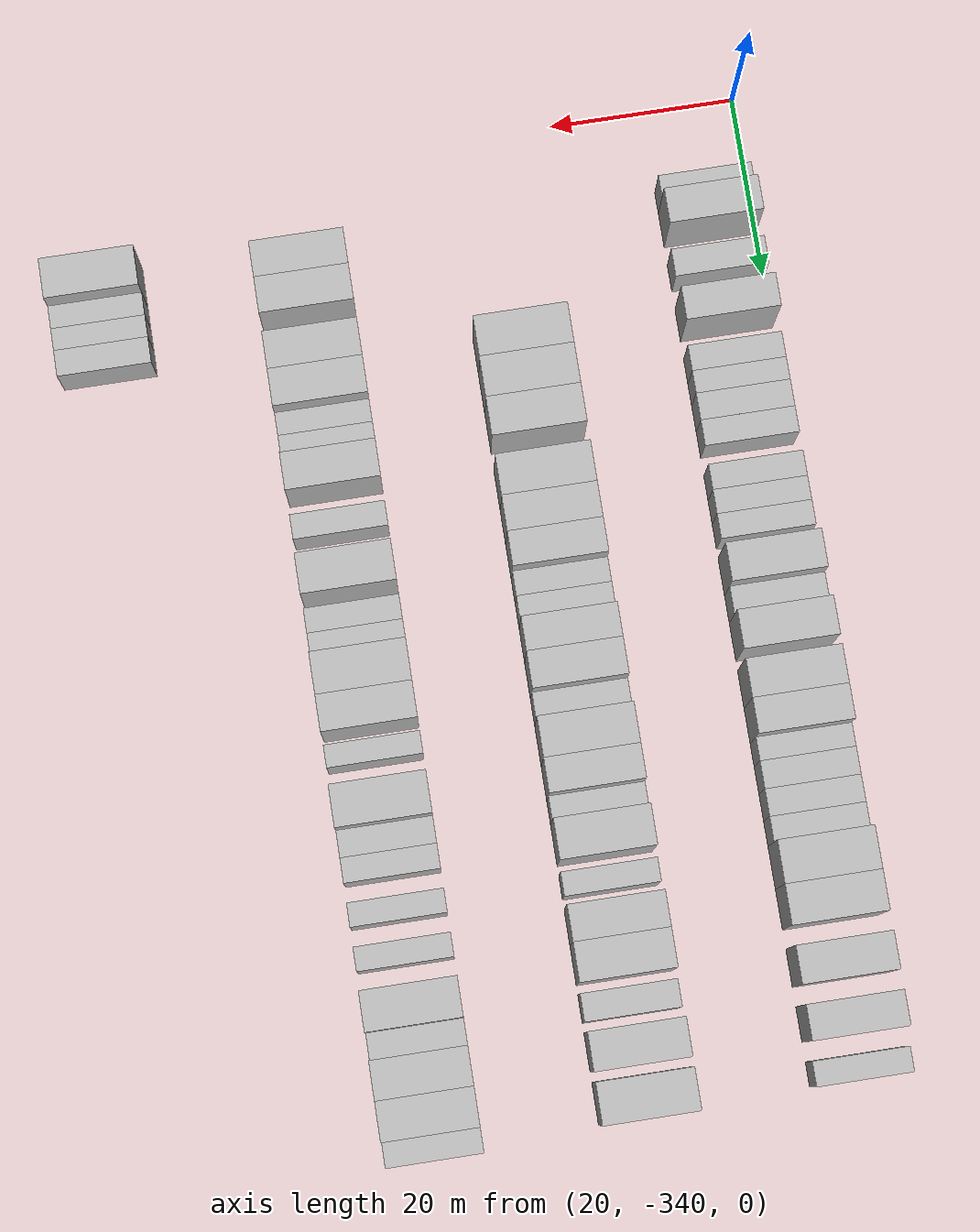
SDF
<sdf version="1.6">
 <world name="default">
  <model name="building_14">
   <static>1</static>
   <pose>25.0000 -329.7077 0 0.000000 0.000000 0.000000</pose>
   <link name="link">
    <pose>0 0 3.00 0 0 0</pose>
    <collision name="collision"><geometry><box><size>10.0000 2.4020 6.0000</size></box></geometry></collision>
    <visual name="visual">
     <cast_shadows>0</cast_shadows>
     <geometry><box><size>10.0000 2.4020 6.0000</size></box></geometry>
     <material>
      <script>
       <uri>model://HANNAS_wall/materials/scripts</uri>
       <uri>model://HANNAS_wall/materials/textures</uri>
       <name>vrc/HANNAS_wall</name>
      </script>
     </material>
    </visual>
   </link>
  </model>
  <model name="building_15">
   <static>1</static>
   <pose>25.0000 -326.6025 0 0.000000 0.000000 0.000000</pose>
   <link name="link">
    <pose>0 0 4.50 0 0 0</pose>
    <collision name="collision"><geometry><box><size>10.0000 3.8086 9.0000</size></box></geometry></collision>
    <visual name="visual">
     <cast_shadows>0</cast_shadows>
     <geometry><box><size>10.0000 3.8086 9.0000</size></box></geometry>
     <material>
      <script>
       <uri>model://HANNAS_wall/materials/scripts</uri>
       <uri>model://HANNAS_wall/materials/textures</uri>
       <name>vrc/HANNAS_wall</name>
      </script>
     </material>
    </visual>
   </link>
  </model>
  <model name="building_16">
   <static>1</static>
   <pose>25.0000 -321.2012 0 0.000000 0.000000 0.000000</pose>
   <link name="link">
    <pose>0 0 3.00 0 0 0</pose>
    <collision name="collision"><geometry><box><size>10.0000 2.9940 6.0000</size></box></geometry></collision>
    <visual name="visual">
     <cast_shadows>0</cast_shadows>
     <geometry><box><size>10.0000 2.9940 6.0000</size></box></geometry>
     <material>
      <script>
       <uri>model://HANNAS_wall/materials/scripts</uri>
       <uri>model://HANNAS_wall/materials/textures</uri>
       <name>vrc/HANNAS_wall</name>
      </script>
     </material>
    </visual>
   </link>
  </model>
  <model name="building_17">
   <static>1</static>
   <pose>25.0000 -315.8958 0 0.000000 0.000000 0.000000</pose>
   <link name="link">
    <pose>0 0 4.50 0 0 0</pose>
    <collision name="collision"><geometry><box><size>10.0000 3.6170 9.0000</size></box></geometry></collision>
    <visual name="visual">
     <cast_shadows>0</cast_shadows>
     <geometry><box><size>10.0000 3.6170 9.0000</size></box></geometry>
     <material>
      <script>
       <uri>model://HANNAS_wall/materials/scripts</uri>
       <uri>model://HANNAS_wall/materials/textures</uri>
       <name>vrc/HANNAS_wall</name>
      </script>
     </material>
    </visual>
   </link>
  </model>
  <model name="building_18">
   <static>1</static>
   <pose>25.0000 -310.6948 0 0.000000 0.000000 0.000000</pose>
   <link name="link">
    <pose>0 0 3.00 0 0 0</pose>
    <collision name="collision"><geometry><box><size>10.0000 2.7850 6.0000</size></box></geometry></collision>
    <visual name="visual">
     <cast_shadows>0</cast_shadows>
     <geometry><box><size>10.0000 2.7850 6.0000</size></box></geometry>
     <material>
      <script>
       <uri>model://HANNAS_wall/materials/scripts</uri>
       <uri>model://HANNAS_wall/materials/textures</uri>
       <name>vrc/HANNAS_wall</name>
      </script>
     </material>
    </visual>
   </link>
  </model>
  <model name="building_19">
   <static>1</static>
   <pose>25.0000 -308.0772 0 0.000000 0.000000 0.000000</pose>
   <link name="link">
    <pose>0 0 3.00 0 0 0</pose>
    <collision name="collision"><geometry><box><size>10.0000 2.4502 6.0000</size></box></geometry></collision>
    <visual name="visual">
     <cast_shadows>0</cast_shadows>
     <geometry><box><size>10.0000 2.4502 6.0000</size></box></geometry>
     <material>
      <script>
       <uri>model://HANNAS_wall/materials/scripts</uri>
       <uri>model://HANNAS_wall/materials/textures</uri>
       <name>vrc/HANNAS_wall</name>
      </script>
     </material>
    </visual>
   </link>
  </model>
  <model name="building_20">
   <static>1</static>
   <pose>25.0000 -305.3926 0 0.000000 0.000000 0.000000</pose>
   <link name="link">
    <pose>0 0 3.00 0 0 0</pose>
    <collision name="collision"><geometry><box><size>10.0000 2.9192 6.0000</size></box></geometry></collision>
    <visual name="visual">
     <cast_shadows>0</cast_shadows>
     <geometry><box><size>10.0000 2.9192 6.0000</size></box></geometry>
     <material>
      <script>
       <uri>model://HANNAS_wall/materials/scripts</uri>
       <uri>model://HANNAS_wall/materials/textures</uri>
       <name>vrc/HANNAS_wall</name>
      </script>
     </material>
    </visual>
   </link>
  </model>
  <model name="building_21">
   <static>1</static>
   <pose>25.0000 -302.5330 0 0.000000 0.000000 0.000000</pose>
   <link name="link">
    <pose>0 0 3.00 0 0 0</pose>
    <collision name="collision"><geometry><box><size>10.0000 2.7999 6.0000</size></box></geometry></collision>
    <visual name="visual">
     <cast_shadows>0</cast_shadows>
     <geometry><box><size>10.0000 2.7999 6.0000</size></box></geometry>
     <material>
      <script>
       <uri>model://HANNAS_wall/materials/scripts</uri>
       <uri>model://HANNAS_wall/materials/textures</uri>
       <name>vrc/HANNAS_wall</name>
      </script>
     </material>
    </visual>
   </link>
  </model>
  <model name="building_22">
   <static>1</static>
   <pose>25.0000 -297.7633 0 0.000000 0.000000 0.000000</pose>
   <link name="link">
    <pose>0 0 3.00 0 0 0</pose>
    <collision name="collision"><geometry><box><size>10.0000 2.7396 6.0000</size></box></geometry></collision>
    <visual name="visual">
     <cast_shadows>0</cast_shadows>
     <geometry><box><size>10.0000 2.7396 6.0000</size></box></geometry>
     <material>
      <script>
       <uri>model://HANNAS_wall/materials/scripts</uri>
       <uri>model://HANNAS_wall/materials/textures</uri>
       <name>vrc/HANNAS_wall</name>
      </script>
     </material>
    </visual>
   </link>
  </model>
  <model name="building_23">
   <static>1</static>
   <pose>25.0000 -295.0949 0 0.000000 0.000000 0.000000</pose>
   <link name="link">
    <pose>0 0 3.00 0 0 0</pose>
    <collision name="collision"><geometry><box><size>10.0000 2.5971 6.0000</size></box></geometry></collision>
    <visual name="visual">
     <cast_shadows>0</cast_shadows>
     <geometry><box><size>10.0000 2.5971 6.0000</size></box></geometry>
     <material>
      <script>
       <uri>model://HANNAS_wall/materials/scripts</uri>
       <uri>model://HANNAS_wall/materials/textures</uri>
       <name>vrc/HANNAS_wall</name>
      </script>
     </material>
    </visual>
   </link>
  </model>
  <model name="building_24">
   <static>1</static>
   <pose>25.0000 -292.4628 0 0.000000 0.000000 0.000000</pose>
   <link name="link">
    <pose>0 0 3.00 0 0 0</pose>
    <collision name="collision"><geometry><box><size>10.0000 2.6672 6.0000</size></box></geometry></collision>
    <visual name="visual">
     <cast_shadows>0</cast_shadows>
     <geometry><box><size>10.0000 2.6672 6.0000</size></box></geometry>
     <material>
      <script>
       <uri>model://HANNAS_wall/materials/scripts</uri>
       <uri>model://HANNAS_wall/materials/textures</uri>
       <name>vrc/HANNAS_wall</name>
      </script>
     </material>
    </visual>
   </link>
  </model>
  <model name="building_25">
   <static>1</static>
   <pose>25.0000 -288.0893 0 0.000000 0.000000 0.000000</pose>
   <link name="link">
    <pose>0 0 4.50 0 0 0</pose>
    <collision name="collision"><geometry><box><size>10.0000 4.0798 9.0000</size></box></geometry></collision>
    <visual name="visual">
     <cast_shadows>0</cast_shadows>
     <geometry><box><size>10.0000 4.0798 9.0000</size></box></geometry>
     <material>
      <script>
       <uri>model://HANNAS_wall/materials/scripts</uri>
       <uri>model://HANNAS_wall/materials/textures</uri>
       <name>vrc/HANNAS_wall</name>
      </script>
     </material>
    </visual>
   </link>
  </model>
  <model name="building_26">
   <static>1</static>
   <pose>25.0000 -284.5569 0 0.000000 0.000000 0.000000</pose>
   <link name="link">
    <pose>0 0 3.00 0 0 0</pose>
    <collision name="collision"><geometry><box><size>10.0000 2.9850 6.0000</size></box></geometry></collision>
    <visual name="visual">
     <cast_shadows>0</cast_shadows>
     <geometry><box><size>10.0000 2.9850 6.0000</size></box></geometry>
     <material>
      <script>
       <uri>model://HANNAS_wall/materials/scripts</uri>
       <uri>model://HANNAS_wall/materials/textures</uri>
       <name>vrc/HANNAS_wall</name>
      </script>
     </material>
    </visual>
   </link>
  </model>
  <model name="building_27">
   <static>1</static>
   <pose>25.0000 -281.0122 0 0.000000 0.000000 0.000000</pose>
   <link name="link">
    <pose>0 0 4.50 0 0 0</pose>
    <collision name="collision"><geometry><box><size>10.0000 4.1042 9.0000</size></box></geometry></collision>
    <visual name="visual">
     <cast_shadows>0</cast_shadows>
     <geometry><box><size>10.0000 4.1042 9.0000</size></box></geometry>
     <material>
      <script>
       <uri>model://HANNAS_wall/materials/scripts</uri>
       <uri>model://HANNAS_wall/materials/textures</uri>
       <name>vrc/HANNAS_wall</name>
      </script>
     </material>
    </visual>
   </link>
  </model>
  <model name="building_28">
   <static>1</static>
   <pose>25.0000 -275.9188 0 0.000000 0.000000 0.000000</pose>
   <link name="link">
    <pose>0 0 4.50 0 0 0</pose>
    <collision name="collision"><geometry><box><size>10.0000 4.0827 9.0000</size></box></geometry></collision>
    <visual name="visual">
     <cast_shadows>0</cast_shadows>
     <geometry><box><size>10.0000 4.0827 9.0000</size></box></geometry>
     <material>
      <script>
       <uri>model://HANNAS_wall/materials/scripts</uri>
       <uri>model://HANNAS_wall/materials/textures</uri>
       <name>vrc/HANNAS_wall</name>
      </script>
     </material>
    </visual>
   </link>
  </model>
  <model name="building_29">
   <static>1</static>
   <pose>25.0000 -272.0114 0 0.000000 0.000000 0.000000</pose>
   <link name="link">
    <pose>0 0 4.50 0 0 0</pose>
    <collision name="collision"><geometry><box><size>10.0000 3.7321 9.0000</size></box></geometry></collision>
    <visual name="visual">
     <cast_shadows>0</cast_shadows>
     <geometry><box><size>10.0000 3.7321 9.0000</size></box></geometry>
     <material>
      <script>
       <uri>model://HANNAS_wall/materials/scripts</uri>
       <uri>model://HANNAS_wall/materials/textures</uri>
       <name>vrc/HANNAS_wall</name>
      </script>
     </material>
    </visual>
   </link>
  </model>
  <model name="building_30">
   <static>1</static>
   <pose>25.0000 -268.9045 0 0.000000 0.000000 0.000000</pose>
   <link name="link">
    <pose>0 0 3.00 0 0 0</pose>
    <collision name="collision"><geometry><box><size>10.0000 2.4816 6.0000</size></box></geometry></collision>
    <visual name="visual">
     <cast_shadows>0</cast_shadows>
     <geometry><box><size>10.0000 2.4816 6.0000</size></box></geometry>
     <material>
      <script>
       <uri>model://HANNAS_wall/materials/scripts</uri>
       <uri>model://HANNAS_wall/materials/textures</uri>
       <name>vrc/HANNAS_wall</name>
      </script>
     </material>
    </visual>
   </link>
  </model>
  <model name="building_31">
   <static>1</static>
   <pose>25.0000 -266.2065 0 0.000000 0.000000 0.000000</pose>
   <link name="link">
    <pose>0 0 3.00 0 0 0</pose>
    <collision name="collision"><geometry><box><size>10.0000 2.9144 6.0000</size></box></geometry></collision>
    <visual name="visual">
     <cast_shadows>0</cast_shadows>
     <geometry><box><size>10.0000 2.9144 6.0000</size></box></geometry>
     <material>
      <script>
       <uri>model://HANNAS_wall/materials/scripts</uri>
       <uri>model://HANNAS_wall/materials/textures</uri>
       <name>vrc/HANNAS_wall</name>
      </script>
     </material>
    </visual>
   </link>
  </model>
  <model name="building_32">
   <static>1</static>
   <pose>25.0000 -263.3191 0 0.000000 0.000000 0.000000</pose>
   <link name="link">
    <pose>0 0 3.00 0 0 0</pose>
    <collision name="collision"><geometry><box><size>10.0000 2.8604 6.0000</size></box></geometry></collision>
    <visual name="visual">
     <cast_shadows>0</cast_shadows>
     <geometry><box><size>10.0000 2.8604 6.0000</size></box></geometry>
     <material>
      <script>
       <uri>model://HANNAS_wall/materials/scripts</uri>
       <uri>model://HANNAS_wall/materials/textures</uri>
       <name>vrc/HANNAS_wall</name>
      </script>
     </material>
    </visual>
   </link>
  </model>
  <model name="building_33">
   <static>1</static>
   <pose>25.0000 -260.5628 0 0.000000 0.000000 0.000000</pose>
   <link name="link">
    <pose>0 0 3.00 0 0 0</pose>
    <collision name="collision"><geometry><box><size>10.0000 2.6522 6.0000</size></box></geometry></collision>
    <visual name="visual">
     <cast_shadows>0</cast_shadows>
     <geometry><box><size>10.0000 2.6522 6.0000</size></box></geometry>
     <material>
      <script>
       <uri>model://HANNAS_wall/materials/scripts</uri>
       <uri>model://HANNAS_wall/materials/textures</uri>
       <name>vrc/HANNAS_wall</name>
      </script>
     </material>
    </visual>
   </link>
  </model>
  <model name="building_34">
   <static>1</static>
   <pose>25.0000 -256.9874 0 0.000000 0.000000 0.000000</pose>
   <link name="link">
    <pose>0 0 4.50 0 0 0</pose>
    <collision name="collision"><geometry><box><size>10.0000 4.4985 9.0000</size></box></geometry></collision>
    <visual name="visual">
     <cast_shadows>0</cast_shadows>
     <geometry><box><size>10.0000 4.4985 9.0000</size></box></geometry>
     <material>
      <script>
       <uri>model://HANNAS_wall/materials/scripts</uri>
       <uri>model://HANNAS_wall/materials/textures</uri>
       <name>vrc/HANNAS_wall</name>
      </script>
     </material>
    </visual>
   </link>
  </model>
  <model name="building_35">
   <static>1</static>
   <pose>25.0000 -252.6322 0 0.000000 0.000000 0.000000</pose>
   <link name="link">
    <pose>0 0 4.50 0 0 0</pose>
    <collision name="collision"><geometry><box><size>10.0000 4.2119 9.0000</size></box></geometry></collision>
    <visual name="visual">
     <cast_shadows>0</cast_shadows>
     <geometry><box><size>10.0000 4.2119 9.0000</size></box></geometry>
     <material>
      <script>
       <uri>model://HANNAS_wall/materials/scripts</uri>
       <uri>model://HANNAS_wall/materials/textures</uri>
       <name>vrc/HANNAS_wall</name>
      </script>
     </material>
    </visual>
   </link>
  </model>
  <model name="building_36">
   <static>1</static>
   <pose>25.0000 -246.5540 0 0.000000 0.000000 0.000000</pose>
   <link name="link">
    <pose>0 0 4.50 0 0 0</pose>
    <collision name="collision"><geometry><box><size>10.0000 3.9444 9.0000</size></box></geometry></collision>
    <visual name="visual">
     <cast_shadows>0</cast_shadows>
     <geometry><box><size>10.0000 3.9444 9.0000</size></box></geometry>
     <material>
      <script>
       <uri>model://HANNAS_wall/materials/scripts</uri>
       <uri>model://HANNAS_wall/materials/textures</uri>
       <name>vrc/HANNAS_wall</name>
      </script>
     </material>
    </visual>
   </link>
  </model>
  <model name="building_37">
   <static>1</static>
   <pose>25.0000 -240.7540 0 0.000000 0.000000 0.000000</pose>
   <link name="link">
    <pose>0 0 4.50 0 0 0</pose>
    <collision name="collision"><geometry><box><size>10.0000 3.6558 9.0000</size></box></geometry></collision>
    <visual name="visual">
     <cast_shadows>0</cast_shadows>
     <geometry><box><size>10.0000 3.6558 9.0000</size></box></geometry>
     <material>
      <script>
       <uri>model://HANNAS_wall/materials/scripts</uri>
       <uri>model://HANNAS_wall/materials/textures</uri>
       <name>vrc/HANNAS_wall</name>
      </script>
     </material>
    </visual>
   </link>
  </model>
  <model name="building_38">
   <static>1</static>
   <pose>25.0000 -235.6396 0 0.000000 0.000000 0.000000</pose>
   <link name="link">
    <pose>0 0 3.00 0 0 0</pose>
    <collision name="collision"><geometry><box><size>10.0000 2.5730 6.0000</size></box></geometry></collision>
    <visual name="visual">
     <cast_shadows>0</cast_shadows>
     <geometry><box><size>10.0000 2.5730 6.0000</size></box></geometry>
     <material>
      <script>
       <uri>model://HANNAS_wall/materials/scripts</uri>
       <uri>model://HANNAS_wall/materials/textures</uri>
       <name>vrc/HANNAS_wall</name>
      </script>
     </material>
    </visual>
   </link>
  </model>
  <model name="building_196">
   <static>1</static>
   <pose>47.0000 -315.7057 0 0.000000 0.000000 0.000000</pose>
   <link name="link">
    <pose>0 0 4.50 0 0 0</pose>
    <collision name="collision"><geometry><box><size>10.0000 4.3849 9.0000</size></box></geometry></collision>
    <visual name="visual">
     <cast_shadows>0</cast_shadows>
     <geometry><box><size>10.0000 4.3849 9.0000</size></box></geometry>
     <material>
      <script>
       <uri>model://HANNAS_wall/materials/scripts</uri>
       <uri>model://HANNAS_wall/materials/textures</uri>
       <name>vrc/HANNAS_wall</name>
      </script>
     </material>
    </visual>
   </link>
  </model>
  <model name="building_197">
   <static>1</static>
   <pose>47.0000 -311.3199 0 0.000000 0.000000 0.000000</pose>
   <link name="link">
    <pose>0 0 4.50 0 0 0</pose>
    <collision name="collision"><geometry><box><size>10.0000 4.3868 9.0000</size></box></geometry></collision>
    <visual name="visual">
     <cast_shadows>0</cast_shadows>
     <geometry><box><size>10.0000 4.3868 9.0000</size></box></geometry>
     <material>
      <script>
       <uri>model://HANNAS_wall/materials/scripts</uri>
       <uri>model://HANNAS_wall/materials/textures</uri>
       <name>vrc/HANNAS_wall</name>
      </script>
     </material>
    </visual>
   </link>
  </model>
  <model name="building_198">
   <static>1</static>
   <pose>47.0000 -307.0439 0 0.000000 0.000000 0.000000</pose>
   <link name="link">
    <pose>0 0 4.50 0 0 0</pose>
    <collision name="collision"><geometry><box><size>10.0000 4.1651 9.0000</size></box></geometry></collision>
    <visual name="visual">
     <cast_shadows>0</cast_shadows>
     <geometry><box><size>10.0000 4.1651 9.0000</size></box></geometry>
     <material>
      <script>
       <uri>model://HANNAS_wall/materials/scripts</uri>
       <uri>model://HANNAS_wall/materials/textures</uri>
       <name>vrc/HANNAS_wall</name>
      </script>
     </material>
    </visual>
   </link>
  </model>
  <model name="building_199">
   <static>1</static>
   <pose>47.0000 -300.7722 0 0.000000 0.000000 0.000000</pose>
   <link name="link">
    <pose>0 0 4.50 0 0 0</pose>
    <collision name="collision"><geometry><box><size>10.0000 4.3783 9.0000</size></box></geometry></collision>
    <visual name="visual">
     <cast_shadows>0</cast_shadows>
     <geometry><box><size>10.0000 4.3783 9.0000</size></box></geometry>
     <material>
      <script>
       <uri>model://HANNAS_wall/materials/scripts</uri>
       <uri>model://HANNAS_wall/materials/textures</uri>
       <name>vrc/HANNAS_wall</name>
      </script>
     </material>
    </visual>
   </link>
  </model>
  <model name="building_200">
   <static>1</static>
   <pose>47.0000 -296.6729 0 0.000000 0.000000 0.000000</pose>
   <link name="link">
    <pose>0 0 4.50 0 0 0</pose>
    <collision name="collision"><geometry><box><size>10.0000 3.8202 9.0000</size></box></geometry></collision>
    <visual name="visual">
     <cast_shadows>0</cast_shadows>
     <geometry><box><size>10.0000 3.8202 9.0000</size></box></geometry>
     <material>
      <script>
       <uri>model://HANNAS_wall/materials/scripts</uri>
       <uri>model://HANNAS_wall/materials/textures</uri>
       <name>vrc/HANNAS_wall</name>
      </script>
     </material>
    </visual>
   </link>
  </model>
  <model name="building_201">
   <static>1</static>
   <pose>47.0000 -292.9131 0 0.000000 0.000000 0.000000</pose>
   <link name="link">
    <pose>0 0 4.50 0 0 0</pose>
    <collision name="collision"><geometry><box><size>10.0000 3.6995 9.0000</size></box></geometry></collision>
    <visual name="visual">
     <cast_shadows>0</cast_shadows>
     <geometry><box><size>10.0000 3.6995 9.0000</size></box></geometry>
     <material>
      <script>
       <uri>model://HANNAS_wall/materials/scripts</uri>
       <uri>model://HANNAS_wall/materials/textures</uri>
       <name>vrc/HANNAS_wall</name>
      </script>
     </material>
    </visual>
   </link>
  </model>
  <model name="building_202">
   <static>1</static>
   <pose>47.0000 -289.7468 0 0.000000 0.000000 0.000000</pose>
   <link name="link">
    <pose>0 0 3.00 0 0 0</pose>
    <collision name="collision"><geometry><box><size>10.0000 2.6333 6.0000</size></box></geometry></collision>
    <visual name="visual">
     <cast_shadows>0</cast_shadows>
     <geometry><box><size>10.0000 2.6333 6.0000</size></box></geometry>
     <material>
      <script>
       <uri>model://HANNAS_wall/materials/scripts</uri>
       <uri>model://HANNAS_wall/materials/textures</uri>
       <name>vrc/HANNAS_wall</name>
      </script>
     </material>
    </visual>
   </link>
  </model>
  <model name="building_203">
   <static>1</static>
   <pose>47.0000 -287.1065 0 0.000000 0.000000 0.000000</pose>
   <link name="link">
    <pose>0 0 3.00 0 0 0</pose>
    <collision name="collision"><geometry><box><size>10.0000 2.6472 6.0000</size></box></geometry></collision>
    <visual name="visual">
     <cast_shadows>0</cast_shadows>
     <geometry><box><size>10.0000 2.6472 6.0000</size></box></geometry>
     <material>
      <script>
       <uri>model://HANNAS_wall/materials/scripts</uri>
       <uri>model://HANNAS_wall/materials/textures</uri>
       <name>vrc/HANNAS_wall</name>
      </script>
     </material>
    </visual>
   </link>
  </model>
  <model name="building_204">
   <static>1</static>
   <pose>47.0000 -283.9664 0 0.000000 0.000000 0.000000</pose>
   <link name="link">
    <pose>0 0 4.50 0 0 0</pose>
    <collision name="collision"><geometry><box><size>10.0000 3.6331 9.0000</size></box></geometry></collision>
    <visual name="visual">
     <cast_shadows>0</cast_shadows>
     <geometry><box><size>10.0000 3.6331 9.0000</size></box></geometry>
     <material>
      <script>
       <uri>model://HANNAS_wall/materials/scripts</uri>
       <uri>model://HANNAS_wall/materials/textures</uri>
       <name>vrc/HANNAS_wall</name>
      </script>
     </material>
    </visual>
   </link>
  </model>
  <model name="building_205">
   <static>1</static>
   <pose>47.0000 -280.1916 0 0.000000 0.000000 0.000000</pose>
   <link name="link">
    <pose>0 0 4.50 0 0 0</pose>
    <collision name="collision"><geometry><box><size>10.0000 3.9166 9.0000</size></box></geometry></collision>
    <visual name="visual">
     <cast_shadows>0</cast_shadows>
     <geometry><box><size>10.0000 3.9166 9.0000</size></box></geometry>
     <material>
      <script>
       <uri>model://HANNAS_wall/materials/scripts</uri>
       <uri>model://HANNAS_wall/materials/textures</uri>
       <name>vrc/HANNAS_wall</name>
      </script>
     </material>
    </visual>
   </link>
  </model>
  <model name="building_206">
   <static>1</static>
   <pose>47.0000 -276.8038 0 0.000000 0.000000 0.000000</pose>
   <link name="link">
    <pose>0 0 3.00 0 0 0</pose>
    <collision name="collision"><geometry><box><size>10.0000 2.8590 6.0000</size></box></geometry></collision>
    <visual name="visual">
     <cast_shadows>0</cast_shadows>
     <geometry><box><size>10.0000 2.8590 6.0000</size></box></geometry>
     <material>
      <script>
       <uri>model://HANNAS_wall/materials/scripts</uri>
       <uri>model://HANNAS_wall/materials/textures</uri>
       <name>vrc/HANNAS_wall</name>
      </script>
     </material>
    </visual>
   </link>
  </model>
  <model name="building_207">
   <static>1</static>
   <pose>47.0000 -273.2282 0 0.000000 0.000000 0.000000</pose>
   <link name="link">
    <pose>0 0 4.50 0 0 0</pose>
    <collision name="collision"><geometry><box><size>10.0000 4.2922 9.0000</size></box></geometry></collision>
    <visual name="visual">
     <cast_shadows>0</cast_shadows>
     <geometry><box><size>10.0000 4.2922 9.0000</size></box></geometry>
     <material>
      <script>
       <uri>model://HANNAS_wall/materials/scripts</uri>
       <uri>model://HANNAS_wall/materials/textures</uri>
       <name>vrc/HANNAS_wall</name>
      </script>
     </material>
    </visual>
   </link>
  </model>
  <model name="building_208">
   <static>1</static>
   <pose>47.0000 -269.2477 0 0.000000 0.000000 0.000000</pose>
   <link name="link">
    <pose>0 0 4.50 0 0 0</pose>
    <collision name="collision"><geometry><box><size>10.0000 3.6688 9.0000</size></box></geometry></collision>
    <visual name="visual">
     <cast_shadows>0</cast_shadows>
     <geometry><box><size>10.0000 3.6688 9.0000</size></box></geometry>
     <material>
      <script>
       <uri>model://HANNAS_wall/materials/scripts</uri>
       <uri>model://HANNAS_wall/materials/textures</uri>
       <name>vrc/HANNAS_wall</name>
      </script>
     </material>
    </visual>
   </link>
  </model>
  <model name="building_209">
   <static>1</static>
   <pose>47.0000 -266.1422 0 0.000000 0.000000 0.000000</pose>
   <link name="link">
    <pose>0 0 3.00 0 0 0</pose>
    <collision name="collision"><geometry><box><size>10.0000 2.5421 6.0000</size></box></geometry></collision>
    <visual name="visual">
     <cast_shadows>0</cast_shadows>
     <geometry><box><size>10.0000 2.5421 6.0000</size></box></geometry>
     <material>
      <script>
       <uri>model://HANNAS_wall/materials/scripts</uri>
       <uri>model://HANNAS_wall/materials/textures</uri>
       <name>vrc/HANNAS_wall</name>
      </script>
     </material>
    </visual>
   </link>
  </model>
  <model name="building_210">
   <static>1</static>
   <pose>47.0000 -262.7251 0 0.000000 0.000000 0.000000</pose>
   <link name="link">
    <pose>0 0 4.50 0 0 0</pose>
    <collision name="collision"><geometry><box><size>10.0000 4.2921 9.0000</size></box></geometry></collision>
    <visual name="visual">
     <cast_shadows>0</cast_shadows>
     <geometry><box><size>10.0000 4.2921 9.0000</size></box></geometry>
     <material>
      <script>
       <uri>model://HANNAS_wall/materials/scripts</uri>
       <uri>model://HANNAS_wall/materials/textures</uri>
       <name>vrc/HANNAS_wall</name>
      </script>
     </material>
    </visual>
   </link>
  </model>
  <model name="building_211">
   <static>1</static>
   <pose>47.0000 -258.3211 0 0.000000 0.000000 0.000000</pose>
   <link name="link">
    <pose>0 0 3.00 0 0 0</pose>
    <collision name="collision"><geometry><box><size>10.0000 2.5159 6.0000</size></box></geometry></collision>
    <visual name="visual">
     <cast_shadows>0</cast_shadows>
     <geometry><box><size>10.0000 2.5159 6.0000</size></box></geometry>
     <material>
      <script>
       <uri>model://HANNAS_wall/materials/scripts</uri>
       <uri>model://HANNAS_wall/materials/textures</uri>
       <name>vrc/HANNAS_wall</name>
      </script>
     </material>
    </visual>
   </link>
  </model>
  <model name="building_212">
   <static>1</static>
   <pose>47.0000 -254.1695 0 0.000000 0.000000 0.000000</pose>
   <link name="link">
    <pose>0 0 4.50 0 0 0</pose>
    <collision name="collision"><geometry><box><size>10.0000 3.7873 9.0000</size></box></geometry></collision>
    <visual name="visual">
     <cast_shadows>0</cast_shadows>
     <geometry><box><size>10.0000 3.7873 9.0000</size></box></geometry>
     <material>
      <script>
       <uri>model://HANNAS_wall/materials/scripts</uri>
       <uri>model://HANNAS_wall/materials/textures</uri>
       <name>vrc/HANNAS_wall</name>
      </script>
     </material>
    </visual>
   </link>
  </model>
  <model name="building_213">
   <static>1</static>
   <pose>47.0000 -250.2228 0 0.000000 0.000000 0.000000</pose>
   <link name="link">
    <pose>0 0 4.50 0 0 0</pose>
    <collision name="collision"><geometry><box><size>10.0000 4.1060 9.0000</size></box></geometry></collision>
    <visual name="visual">
     <cast_shadows>0</cast_shadows>
     <geometry><box><size>10.0000 4.1060 9.0000</size></box></geometry>
     <material>
      <script>
       <uri>model://HANNAS_wall/materials/scripts</uri>
       <uri>model://HANNAS_wall/materials/textures</uri>
       <name>vrc/HANNAS_wall</name>
      </script>
     </material>
    </visual>
   </link>
  </model>
  <model name="building_214">
   <static>1</static>
   <pose>47.0000 -245.7230 0 0.000000 0.000000 0.000000</pose>
   <link name="link">
    <pose>0 0 3.00 0 0 0</pose>
    <collision name="collision"><geometry><box><size>10.0000 2.8937 6.0000</size></box></geometry></collision>
    <visual name="visual">
     <cast_shadows>0</cast_shadows>
     <geometry><box><size>10.0000 2.8937 6.0000</size></box></geometry>
     <material>
      <script>
       <uri>model://HANNAS_wall/materials/scripts</uri>
       <uri>model://HANNAS_wall/materials/textures</uri>
       <name>vrc/HANNAS_wall</name>
      </script>
     </material>
    </visual>
   </link>
  </model>
  <model name="building_215">
   <static>1</static>
   <pose>47.0000 -241.2627 0 0.000000 0.000000 0.000000</pose>
   <link name="link">
    <pose>0 0 4.50 0 0 0</pose>
    <collision name="collision"><geometry><box><size>10.0000 4.0269 9.0000</size></box></geometry></collision>
    <visual name="visual">
     <cast_shadows>0</cast_shadows>
     <geometry><box><size>10.0000 4.0269 9.0000</size></box></geometry>
     <material>
      <script>
       <uri>model://HANNAS_wall/materials/scripts</uri>
       <uri>model://HANNAS_wall/materials/textures</uri>
       <name>vrc/HANNAS_wall</name>
      </script>
     </material>
    </visual>
   </link>
  </model>
  <model name="building_216">
   <static>1</static>
   <pose>47.0000 -236.0700 0 0.000000 0.000000 0.000000</pose>
   <link name="link">
    <pose>0 0 4.50 0 0 0</pose>
    <collision name="collision"><geometry><box><size>10.0000 4.3585 9.0000</size></box></geometry></collision>
    <visual name="visual">
     <cast_shadows>0</cast_shadows>
     <geometry><box><size>10.0000 4.3585 9.0000</size></box></geometry>
     <material>
      <script>
       <uri>model://HANNAS_wall/materials/scripts</uri>
       <uri>model://HANNAS_wall/materials/textures</uri>
       <name>vrc/HANNAS_wall</name>
      </script>
     </material>
    </visual>
   </link>
  </model>
  <model name="building_374">
   <static>1</static>
   <pose>69.0000 -327.5033 0 0.000000 0.000000 0.000000</pose>
   <link name="link">
    <pose>0 0 4.50 0 0 0</pose>
    <collision name="collision"><geometry><box><size>10.0000 3.9179 9.0000</size></box></geometry></collision>
    <visual name="visual">
     <cast_shadows>0</cast_shadows>
     <geometry><box><size>10.0000 3.9179 9.0000</size></box></geometry>
     <material>
      <script>
       <uri>model://HANNAS_wall/materials/scripts</uri>
       <uri>model://HANNAS_wall/materials/textures</uri>
       <name>vrc/HANNAS_wall</name>
      </script>
     </material>
    </visual>
   </link>
  </model>
  <model name="building_375">
   <static>1</static>
   <pose>69.0000 -323.5812 0 0.000000 0.000000 0.000000</pose>
   <link name="link">
    <pose>0 0 4.50 0 0 0</pose>
    <collision name="collision"><geometry><box><size>10.0000 3.9263 9.0000</size></box></geometry></collision>
    <visual name="visual">
     <cast_shadows>0</cast_shadows>
     <geometry><box><size>10.0000 3.9263 9.0000</size></box></geometry>
     <material>
      <script>
       <uri>model://HANNAS_wall/materials/scripts</uri>
       <uri>model://HANNAS_wall/materials/textures</uri>
       <name>vrc/HANNAS_wall</name>
      </script>
     </material>
    </visual>
   </link>
  </model>
  <model name="building_376">
   <static>1</static>
   <pose>69.0000 -317.5836 0 0.000000 0.000000 0.000000</pose>
   <link name="link">
    <pose>0 0 4.50 0 0 0</pose>
    <collision name="collision"><geometry><box><size>10.0000 4.0689 9.0000</size></box></geometry></collision>
    <visual name="visual">
     <cast_shadows>0</cast_shadows>
     <geometry><box><size>10.0000 4.0689 9.0000</size></box></geometry>
     <material>
      <script>
       <uri>model://HANNAS_wall/materials/scripts</uri>
       <uri>model://HANNAS_wall/materials/textures</uri>
       <name>vrc/HANNAS_wall</name>
      </script>
     </material>
    </visual>
   </link>
  </model>
  <model name="building_377">
   <static>1</static>
   <pose>69.0000 -313.5362 0 0.000000 0.000000 0.000000</pose>
   <link name="link">
    <pose>0 0 4.50 0 0 0</pose>
    <collision name="collision"><geometry><box><size>10.0000 4.0260 9.0000</size></box></geometry></collision>
    <visual name="visual">
     <cast_shadows>0</cast_shadows>
     <geometry><box><size>10.0000 4.0260 9.0000</size></box></geometry>
     <material>
      <script>
       <uri>model://HANNAS_wall/materials/scripts</uri>
       <uri>model://HANNAS_wall/materials/textures</uri>
       <name>vrc/HANNAS_wall</name>
      </script>
     </material>
    </visual>
   </link>
  </model>
  <model name="building_378">
   <static>1</static>
   <pose>69.0000 -310.2844 0 0.000000 0.000000 0.000000</pose>
   <link name="link">
    <pose>0 0 3.00 0 0 0</pose>
    <collision name="collision"><geometry><box><size>10.0000 2.4776 6.0000</size></box></geometry></collision>
    <visual name="visual">
     <cast_shadows>0</cast_shadows>
     <geometry><box><size>10.0000 2.4776 6.0000</size></box></geometry>
     <material>
      <script>
       <uri>model://HANNAS_wall/materials/scripts</uri>
       <uri>model://HANNAS_wall/materials/textures</uri>
       <name>vrc/HANNAS_wall</name>
      </script>
     </material>
    </visual>
   </link>
  </model>
  <model name="building_379">
   <static>1</static>
   <pose>69.0000 -307.7942 0 0.000000 0.000000 0.000000</pose>
   <link name="link">
    <pose>0 0 3.00 0 0 0</pose>
    <collision name="collision"><geometry><box><size>10.0000 2.5027 6.0000</size></box></geometry></collision>
    <visual name="visual">
     <cast_shadows>0</cast_shadows>
     <geometry><box><size>10.0000 2.5027 6.0000</size></box></geometry>
     <material>
      <script>
       <uri>model://HANNAS_wall/materials/scripts</uri>
       <uri>model://HANNAS_wall/materials/textures</uri>
       <name>vrc/HANNAS_wall</name>
      </script>
     </material>
    </visual>
   </link>
  </model>
  <model name="building_380">
   <static>1</static>
   <pose>69.0000 -304.5286 0 0.000000 0.000000 0.000000</pose>
   <link name="link">
    <pose>0 0 4.50 0 0 0</pose>
    <collision name="collision"><geometry><box><size>10.0000 4.0286 9.0000</size></box></geometry></collision>
    <visual name="visual">
     <cast_shadows>0</cast_shadows>
     <geometry><box><size>10.0000 4.0286 9.0000</size></box></geometry>
     <material>
      <script>
       <uri>model://HANNAS_wall/materials/scripts</uri>
       <uri>model://HANNAS_wall/materials/textures</uri>
       <name>vrc/HANNAS_wall</name>
      </script>
     </material>
    </visual>
   </link>
  </model>
  <model name="building_381">
   <static>1</static>
   <pose>69.0000 -299.1820 0 0.000000 0.000000 0.000000</pose>
   <link name="link">
    <pose>0 0 3.00 0 0 0</pose>
    <collision name="collision"><geometry><box><size>10.0000 2.6646 6.0000</size></box></geometry></collision>
    <visual name="visual">
     <cast_shadows>0</cast_shadows>
     <geometry><box><size>10.0000 2.6646 6.0000</size></box></geometry>
     <material>
      <script>
       <uri>model://HANNAS_wall/materials/scripts</uri>
       <uri>model://HANNAS_wall/materials/textures</uri>
       <name>vrc/HANNAS_wall</name>
      </script>
     </material>
    </visual>
   </link>
  </model>
  <model name="building_382">
   <static>1</static>
   <pose>69.0000 -293.6817 0 0.000000 0.000000 0.000000</pose>
   <link name="link">
    <pose>0 0 4.50 0 0 0</pose>
    <collision name="collision"><geometry><box><size>10.0000 4.3359 9.0000</size></box></geometry></collision>
    <visual name="visual">
     <cast_shadows>0</cast_shadows>
     <geometry><box><size>10.0000 4.3359 9.0000</size></box></geometry>
     <material>
      <script>
       <uri>model://HANNAS_wall/materials/scripts</uri>
       <uri>model://HANNAS_wall/materials/textures</uri>
       <name>vrc/HANNAS_wall</name>
      </script>
     </material>
    </visual>
   </link>
  </model>
  <model name="building_383">
   <static>1</static>
   <pose>69.0000 -289.1917 0 0.000000 0.000000 0.000000</pose>
   <link name="link">
    <pose>0 0 3.00 0 0 0</pose>
    <collision name="collision"><geometry><box><size>10.0000 2.6442 6.0000</size></box></geometry></collision>
    <visual name="visual">
     <cast_shadows>0</cast_shadows>
     <geometry><box><size>10.0000 2.6442 6.0000</size></box></geometry>
     <material>
      <script>
       <uri>model://HANNAS_wall/materials/scripts</uri>
       <uri>model://HANNAS_wall/materials/textures</uri>
       <name>vrc/HANNAS_wall</name>
      </script>
     </material>
    </visual>
   </link>
  </model>
  <model name="building_384">
   <static>1</static>
   <pose>69.0000 -286.6618 0 0.000000 0.000000 0.000000</pose>
   <link name="link">
    <pose>0 0 3.00 0 0 0</pose>
    <collision name="collision"><geometry><box><size>10.0000 2.4156 6.0000</size></box></geometry></collision>
    <visual name="visual">
     <cast_shadows>0</cast_shadows>
     <geometry><box><size>10.0000 2.4156 6.0000</size></box></geometry>
     <material>
      <script>
       <uri>model://HANNAS_wall/materials/scripts</uri>
       <uri>model://HANNAS_wall/materials/textures</uri>
       <name>vrc/HANNAS_wall</name>
      </script>
     </material>
    </visual>
   </link>
  </model>
  <model name="building_385">
   <static>1</static>
   <pose>69.0000 -283.2258 0 0.000000 0.000000 0.000000</pose>
   <link name="link">
    <pose>0 0 4.50 0 0 0</pose>
    <collision name="collision"><geometry><box><size>10.0000 4.4562 9.0000</size></box></geometry></collision>
    <visual name="visual">
     <cast_shadows>0</cast_shadows>
     <geometry><box><size>10.0000 4.4562 9.0000</size></box></geometry>
     <material>
      <script>
       <uri>model://HANNAS_wall/materials/scripts</uri>
       <uri>model://HANNAS_wall/materials/textures</uri>
       <name>vrc/HANNAS_wall</name>
      </script>
     </material>
    </visual>
   </link>
  </model>
  <model name="building_386">
   <static>1</static>
   <pose>69.0000 -279.0586 0 0.000000 0.000000 0.000000</pose>
   <link name="link">
    <pose>0 0 4.50 0 0 0</pose>
    <collision name="collision"><geometry><box><size>10.0000 3.8782 9.0000</size></box></geometry></collision>
    <visual name="visual">
     <cast_shadows>0</cast_shadows>
     <geometry><box><size>10.0000 3.8782 9.0000</size></box></geometry>
     <material>
      <script>
       <uri>model://HANNAS_wall/materials/scripts</uri>
       <uri>model://HANNAS_wall/materials/textures</uri>
       <name>vrc/HANNAS_wall</name>
      </script>
     </material>
    </visual>
   </link>
  </model>
  <model name="building_387">
   <static>1</static>
   <pose>69.0000 -274.9193 0 0.000000 0.000000 0.000000</pose>
   <link name="link">
    <pose>0 0 3.00 0 0 0</pose>
    <collision name="collision"><geometry><box><size>10.0000 2.4004 6.0000</size></box></geometry></collision>
    <visual name="visual">
     <cast_shadows>0</cast_shadows>
     <geometry><box><size>10.0000 2.4004 6.0000</size></box></geometry>
     <material>
      <script>
       <uri>model://HANNAS_wall/materials/scripts</uri>
       <uri>model://HANNAS_wall/materials/textures</uri>
       <name>vrc/HANNAS_wall</name>
      </script>
     </material>
    </visual>
   </link>
  </model>
  <model name="building_388">
   <static>1</static>
   <pose>69.0000 -269.4883 0 0.000000 0.000000 0.000000</pose>
   <link name="link">
    <pose>0 0 4.50 0 0 0</pose>
    <collision name="collision"><geometry><box><size>10.0000 4.4618 9.0000</size></box></geometry></collision>
    <visual name="visual">
     <cast_shadows>0</cast_shadows>
     <geometry><box><size>10.0000 4.4618 9.0000</size></box></geometry>
     <material>
      <script>
       <uri>model://HANNAS_wall/materials/scripts</uri>
       <uri>model://HANNAS_wall/materials/textures</uri>
       <name>vrc/HANNAS_wall</name>
      </script>
     </material>
    </visual>
   </link>
  </model>
  <model name="building_389">
   <static>1</static>
   <pose>69.0000 -265.8402 0 0.000000 0.000000 0.000000</pose>
   <link name="link">
    <pose>0 0 3.00 0 0 0</pose>
    <collision name="collision"><geometry><box><size>10.0000 2.8344 6.0000</size></box></geometry></collision>
    <visual name="visual">
     <cast_shadows>0</cast_shadows>
     <geometry><box><size>10.0000 2.8344 6.0000</size></box></geometry>
     <material>
      <script>
       <uri>model://HANNAS_wall/materials/scripts</uri>
       <uri>model://HANNAS_wall/materials/textures</uri>
       <name>vrc/HANNAS_wall</name>
      </script>
     </material>
    </visual>
   </link>
  </model>
  <model name="building_390">
   <static>1</static>
   <pose>69.0000 -263.1119 0 0.000000 0.000000 0.000000</pose>
   <link name="link">
    <pose>0 0 3.00 0 0 0</pose>
    <collision name="collision"><geometry><box><size>10.0000 2.6222 6.0000</size></box></geometry></collision>
    <visual name="visual">
     <cast_shadows>0</cast_shadows>
     <geometry><box><size>10.0000 2.6222 6.0000</size></box></geometry>
     <material>
      <script>
       <uri>model://HANNAS_wall/materials/scripts</uri>
       <uri>model://HANNAS_wall/materials/textures</uri>
       <name>vrc/HANNAS_wall</name>
      </script>
     </material>
    </visual>
   </link>
  </model>
  <model name="building_391">
   <static>1</static>
   <pose>69.0000 -258.5490 0 0.000000 0.000000 0.000000</pose>
   <link name="link">
    <pose>0 0 3.00 0 0 0</pose>
    <collision name="collision"><geometry><box><size>10.0000 2.5036 6.0000</size></box></geometry></collision>
    <visual name="visual">
     <cast_shadows>0</cast_shadows>
     <geometry><box><size>10.0000 2.5036 6.0000</size></box></geometry>
     <material>
      <script>
       <uri>model://HANNAS_wall/materials/scripts</uri>
       <uri>model://HANNAS_wall/materials/textures</uri>
       <name>vrc/HANNAS_wall</name>
      </script>
     </material>
    </visual>
   </link>
  </model>
  <model name="building_392">
   <static>1</static>
   <pose>69.0000 -254.0367 0 0.000000 0.000000 0.000000</pose>
   <link name="link">
    <pose>0 0 3.00 0 0 0</pose>
    <collision name="collision"><geometry><box><size>10.0000 2.5210 6.0000</size></box></geometry></collision>
    <visual name="visual">
     <cast_shadows>0</cast_shadows>
     <geometry><box><size>10.0000 2.5210 6.0000</size></box></geometry>
     <material>
      <script>
       <uri>model://HANNAS_wall/materials/scripts</uri>
       <uri>model://HANNAS_wall/materials/textures</uri>
       <name>vrc/HANNAS_wall</name>
      </script>
     </material>
    </visual>
   </link>
  </model>
  <model name="building_393">
   <static>1</static>
   <pose>69.0000 -248.6800 0 0.000000 0.000000 0.000000</pose>
   <link name="link">
    <pose>0 0 4.50 0 0 0</pose>
    <collision name="collision"><geometry><box><size>10.0000 4.1924 9.0000</size></box></geometry></collision>
    <visual name="visual">
     <cast_shadows>0</cast_shadows>
     <geometry><box><size>10.0000 4.1924 9.0000</size></box></geometry>
     <material>
      <script>
       <uri>model://HANNAS_wall/materials/scripts</uri>
       <uri>model://HANNAS_wall/materials/textures</uri>
       <name>vrc/HANNAS_wall</name>
      </script>
     </material>
    </visual>
   </link>
  </model>
  <model name="building_394">
   <static>1</static>
   <pose>69.0000 -245.1901 0 0.000000 0.000000 0.000000</pose>
   <link name="link">
    <pose>0 0 3.00 0 0 0</pose>
    <collision name="collision"><geometry><box><size>10.0000 2.7873 6.0000</size></box></geometry></collision>
    <visual name="visual">
     <cast_shadows>0</cast_shadows>
     <geometry><box><size>10.0000 2.7873 6.0000</size></box></geometry>
     <material>
      <script>
       <uri>model://HANNAS_wall/materials/scripts</uri>
       <uri>model://HANNAS_wall/materials/textures</uri>
       <name>vrc/HANNAS_wall</name>
      </script>
     </material>
    </visual>
   </link>
  </model>
  <model name="building_395">
   <static>1</static>
   <pose>69.0000 -241.7773 0 0.000000 0.000000 0.000000</pose>
   <link name="link">
    <pose>0 0 4.50 0 0 0</pose>
    <collision name="collision"><geometry><box><size>10.0000 4.0382 9.0000</size></box></geometry></collision>
    <visual name="visual">
     <cast_shadows>0</cast_shadows>
     <geometry><box><size>10.0000 4.0382 9.0000</size></box></geometry>
     <material>
      <script>
       <uri>model://HANNAS_wall/materials/scripts</uri>
       <uri>model://HANNAS_wall/materials/textures</uri>
       <name>vrc/HANNAS_wall</name>
      </script>
     </material>
    </visual>
   </link>
  </model>
  <model name="building_396">
   <static>1</static>
   <pose>69.0000 -237.7087 0 0.000000 0.000000 0.000000</pose>
   <link name="link">
    <pose>0 0 4.50 0 0 0</pose>
    <collision name="collision"><geometry><box><size>10.0000 4.0991 9.0000</size></box></geometry></collision>
    <visual name="visual">
     <cast_shadows>0</cast_shadows>
     <geometry><box><size>10.0000 4.0991 9.0000</size></box></geometry>
     <material>
      <script>
       <uri>model://HANNAS_wall/materials/scripts</uri>
       <uri>model://HANNAS_wall/materials/textures</uri>
       <name>vrc/HANNAS_wall</name>
      </script>
     </material>
    </visual>
   </link>
  </model>
  <model name="building_397">
   <static>1</static>
   <pose>69.0000 -234.3520 0 0.000000 0.000000 0.000000</pose>
   <link name="link">
    <pose>0 0 3.00 0 0 0</pose>
    <collision name="collision"><geometry><box><size>10.0000 2.6143 6.0000</size></box></geometry></collision>
    <visual name="visual">
     <cast_shadows>0</cast_shadows>
     <geometry><box><size>10.0000 2.6143 6.0000</size></box></geometry>
     <material>
      <script>
       <uri>model://HANNAS_wall/materials/scripts</uri>
       <uri>model://HANNAS_wall/materials/textures</uri>
       <name>vrc/HANNAS_wall</name>
      </script>
     </material>
    </visual>
   </link>
  </model>
  <model name="building_566">
   <static>1</static>
   <pose>91.0000 -328.7721 0 0.000000 0.000000 0.000000</pose>
   <link name="link">
    <pose>0 0 4.50 0 0 0</pose>
    <collision name="collision"><geometry><box><size>10.0000 4.3339 9.0000</size></box></geometry></collision>
    <visual name="visual">
     <cast_shadows>0</cast_shadows>
     <geometry><box><size>10.0000 4.3339 9.0000</size></box></geometry>
     <material>
      <script>
       <uri>model://HANNAS_wall/materials/scripts</uri>
       <uri>model://HANNAS_wall/materials/textures</uri>
       <name>vrc/HANNAS_wall</name>
      </script>
     </material>
    </visual>
   </link>
  </model>
  <model name="building_567">
   <static>1</static>
   <pose>91.0000 -325.3589 0 0.000000 0.000000 0.000000</pose>
   <link name="link">
    <pose>0 0 3.00 0 0 0</pose>
    <collision name="collision"><geometry><box><size>10.0000 2.4925 6.0000</size></box></geometry></collision>
    <visual name="visual">
     <cast_shadows>0</cast_shadows>
     <geometry><box><size>10.0000 2.4925 6.0000</size></box></geometry>
     <material>
      <script>
       <uri>model://HANNAS_wall/materials/scripts</uri>
       <uri>model://HANNAS_wall/materials/textures</uri>
       <name>vrc/HANNAS_wall</name>
      </script>
     </material>
    </visual>
   </link>
  </model>
  <model name="building_568">
   <static>1</static>
   <pose>91.0000 -322.9123 0 0.000000 0.000000 0.000000</pose>
   <link name="link">
    <pose>0 0 3.00 0 0 0</pose>
    <collision name="collision"><geometry><box><size>10.0000 2.4008 6.0000</size></box></geometry></collision>
    <visual name="visual">
     <cast_shadows>0</cast_shadows>
     <geometry><box><size>10.0000 2.4008 6.0000</size></box></geometry>
     <material>
      <script>
       <uri>model://HANNAS_wall/materials/scripts</uri>
       <uri>model://HANNAS_wall/materials/textures</uri>
       <name>vrc/HANNAS_wall</name>
      </script>
     </material>
    </visual>
   </link>
  </model>
  <model name="building_569">
   <static>1</static>
   <pose>91.0000 -320.3008 0 0.000000 0.000000 0.000000</pose>
   <link name="link">
    <pose>0 0 3.00 0 0 0</pose>
    <collision name="collision"><geometry><box><size>10.0000 2.8221 6.0000</size></box></geometry></collision>
    <visual name="visual">
     <cast_shadows>0</cast_shadows>
     <geometry><box><size>10.0000 2.8221 6.0000</size></box></geometry>
     <material>
      <script>
       <uri>model://HANNAS_wall/materials/scripts</uri>
       <uri>model://HANNAS_wall/materials/textures</uri>
       <name>vrc/HANNAS_wall</name>
      </script>
     </material>
    </visual>
   </link>
  </model>
 </world>
</sdf>
